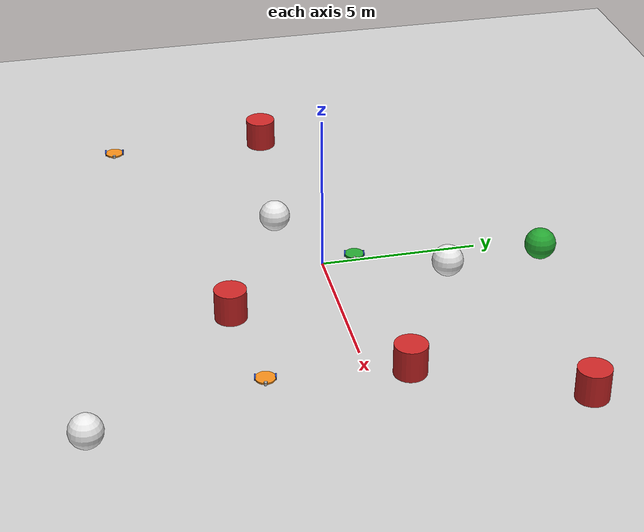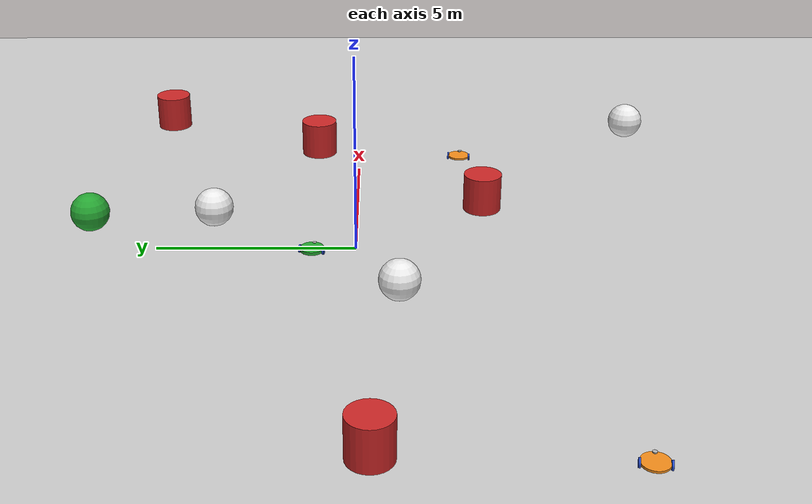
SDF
<sdf version="1.6">
 <world name="default">
  <light name="sun" type="directional">
   <pose>0 0 10 0 -0 0</pose>
   <diffuse>0.8 0.8 0.8 1</diffuse>
   <specular>0.2 0.2 0.2 1</specular>
   <attenuation>
    <range>1000</range>
    <constant>0.9</constant>
    <linear>0.01</linear>
    <quadratic>0.001</quadratic>
   </attenuation>
   <direction>-0.5 0.1 -0.9</direction>
  </light>
  <model name="ground_plane">
   <static>1</static>
   <link name="link">
    <collision name="collision">
     <geometry><plane><normal>0 0 1</normal><size>100 100</size></plane></geometry>
     <surface><friction><ode><mu>100</mu><mu2>50</mu2></ode></friction></surface>
    </collision>
    <visual name="visual">
     <cast_shadows>0</cast_shadows>
     <geometry><plane><normal>0 0 1</normal><size>100 100</size></plane></geometry>
     <material>
      <script><uri>file://media/materials/scripts/gazebo.material</uri><name>Gazebo/Grey</name></script>
     </material>
    </visual>
   </link>
  </model>
  <gravity>0 0 -9.8</gravity>
  <magnetic_field>6e-06 2.3e-05 -4.2e-05</magnetic_field>
  <atmosphere type="adiabatic"/>
  <physics name="default_physics" default="0" type="ode">
   <max_step_size>0.001</max_step_size>
   <real_time_factor>1</real_time_factor>
   <real_time_update_rate>1000</real_time_update_rate>
  </physics>
  <scene><ambient>0.4 0.4 0.4 1</ambient><background>0.7 0.7 0.7 1</background><shadows>1</shadows></scene>
  <spherical_coordinates>
   <surface_model>EARTH_WGS84</surface_model>
   <latitude_deg>0</latitude_deg>
   <longitude_deg>0</longitude_deg>
   <elevation>0</elevation>
   <heading_deg>0</heading_deg>
  </spherical_coordinates>
  <model name="ballA">
   <link name="block">
    <inertial>
     <mass>0.1</mass>
     <inertia><ixx>1.5e-05</ixx><ixy>0</ixy><ixz>0</ixz><iyy>1.5e-05</iyy><iyz>0</iyz><izz>1.5e-05</izz></inertia>
    </inertial>
    <collision name="block_collision">
     <geometry><sphere><radius>0.5</radius></sphere></geometry>
     <surface>
      <contact><ode><kp>100</kp><kd>100</kd><min_depth>0.001</min_depth></ode></contact>
      <friction><ode><mu>100000</mu><mu2>100000</mu2></ode></friction>
     </surface>
    </collision>
    <visual name="block_visual">
     <geometry><sphere><radius>0.5</radius></sphere></geometry>
     <material>
      <script><name>Gazebo/White</name><uri>file://media/materials/scripts/gazebo.material</uri></script>
     </material>
    </visual>
   </link>
   <pose>1.40486 3.70201 0.489249 0 -0 0</pose>
  </model>
  <model name="ballB">
   <link name="block">
    <inertial>
     <mass>0.1</mass>
     <inertia><ixx>1.5e-05</ixx><ixy>0</ixy><ixz>0</ixz><iyy>1.5e-05</iyy><iyz>0</iyz><izz>1.5e-05</izz></inertia>
    </inertial>
    <collision name="block_collision">
     <geometry><sphere><radius>0.5</radius></sphere></geometry>
     <surface>
      <contact><ode><kp>100</kp><kd>100</kd><min_depth>0.001</min_depth></ode></contact>
      <friction><ode><mu>100000</mu><mu2>100000</mu2></ode></friction>
     </surface>
    </collision>
    <visual name="block_visual">
     <geometry><sphere><radius>0.5</radius></sphere></geometry>
     <material>
      <script><name>Gazebo/White</name><uri>file://media/materials/scripts/gazebo.material</uri></script>
     </material>
    </visual>
   </link>
   <pose>7.574 -8.10566 0.489249 0 -0 0</pose>
  </model>
  <model name="CILC">
   <link name="block">
    <inertial>
     <mass>0.1</mass>
     <inertia>
      <ixx>0.0395417</ixx>
      <ixy>0</ixy>
      <ixz>0</ixz>
      <iyy>0.106208</iyy>
      <iyz>0</iyz>
      <izz>0.106208</izz>
     </inertia>
    </inertial>
    <collision name="block_collision">
     <geometry><cylinder><length>1</length><radius>0.5</radius></cylinder></geometry>
     <surface>
      <contact><ode><kp>1e+08</kp><kd>100</kd><min_depth>0.001</min_depth></ode></contact>
      <friction><ode><mu>100000</mu><mu2>100000</mu2></ode></friction>
     </surface>
    </collision>
    <visual name="block_visual">
     <geometry><cylinder><length>1</length><radius>0.5</radius></cylinder></geometry>
     <material>
      <script><name>Gazebo/Red</name><uri>file://media/materials/scripts/gazebo.material</uri></script>
     </material>
    </visual>
   </link>
   <pose>6.26306 1.18311 0.499054 5.2e-05 -0.000108 -0</pose>
  </model>
  <model name="CILD">
   <link name="block">
    <inertial>
     <mass>0.1</mass>
     <inertia>
      <ixx>0.0395417</ixx>
      <ixy>0</ixy>
      <ixz>0</ixz>
      <iyy>0.106208</iyy>
      <iyz>0</iyz>
      <izz>0.106208</izz>
     </inertia>
    </inertial>
    <collision name="block_collision">
     <geometry><cylinder><length>1</length><radius>0.5</radius></cylinder></geometry>
     <surface>
      <contact><ode><kp>1e+08</kp><kd>100</kd><min_depth>0.001</min_depth></ode></contact>
      <friction><ode><mu>100000</mu><mu2>100000</mu2></ode></friction>
     </surface>
    </collision>
    <visual name="block_visual">
     <geometry><cylinder><length>1</length><radius>0.5</radius></cylinder></geometry>
     <material>
      <script><name>Gazebo/Red</name><uri>file://media/materials/scripts/gazebo.material</uri></script>
     </material>
    </visual>
   </link>
   <pose>8.48065 5.82464 0.499045 4.9e-05 -9e-05 0</pose>
  </model>
  <model name="CILE">
   <link name="block">
    <inertial>
     <mass>0.1</mass>
     <inertia>
      <ixx>0.0395417</ixx>
      <ixy>0</ixy>
      <ixz>0</ixz>
      <iyy>0.106208</iyy>
      <iyz>0</iyz>
      <izz>0.106208</izz>
     </inertia>
    </inertial>
    <collision name="block_collision">
     <geometry><cylinder><length>1</length><radius>0.5</radius></cylinder></geometry>
     <surface>
      <contact><ode><kp>1e+08</kp><kd>100</kd><min_depth>0.001</min_depth></ode></contact>
      <friction><ode><mu>100000</mu><mu2>100000</mu2></ode></friction>
     </surface>
    </collision>
    <visual name="block_visual">
     <geometry><cylinder><length>1</length><radius>0.5</radius></cylinder></geometry>
     <material>
      <script><name>Gazebo/Red</name><uri>file://media/materials/scripts/gazebo.material</uri></script>
     </material>
    </visual>
   </link>
   <pose>-8.48288 -0.40629 0.499052 4.9e-05 -0.000104 0</pose>
  </model>
  <model name="robot5">
   <link name="block">
    <inertial>
     <mass>0.1</mass>
     <inertia><ixx>1.5e-05</ixx><ixy>0</ixy><ixz>0</ixz><iyy>1.5e-05</iyy><iyz>0</iyz><izz>1.5e-05</izz></inertia>
    </inertial>
    <collision name="block_collision">
     <geometry><sphere><radius>0.5</radius></sphere></geometry>
     <surface>
      <contact><ode><kp>1e+08</kp><kd>100</kd><min_depth>0.001</min_depth></ode></contact>
      <friction><ode><mu>100000</mu><mu2>100000</mu2></ode></friction>
     </surface>
    </collision>
    <visual name="block_visual">
     <geometry><sphere><radius>0.5</radius></sphere></geometry>
     <material>
      <script><name>Gazebo/Green</name><uri>file://media/materials/scripts/gazebo.material</uri></script>
     </material>
    </visual>
   </link>
   <pose>1.09347 6.8519 0.499704 0 -0 0</pose>
  </model>
  <model name="ballA_clone">
   <link name="block">
    <inertial>
     <mass>0.1</mass>
     <inertia><ixx>1.5e-05</ixx><ixy>0</ixy><ixz>0</ixz><iyy>1.5e-05</iyy><iyz>0</iyz><izz>1.5e-05</izz></inertia>
    </inertial>
    <collision name="block_collision">
     <geometry><sphere><radius>0.5</radius></sphere></geometry>
     <surface>
      <contact><ode><kp>100</kp><kd>100</kd><min_depth>0.001</min_depth></ode></contact>
      <friction><ode><mu>100000</mu><mu2>100000</mu2></ode></friction>
     </surface>
    </collision>
    <visual name="block_visual">
     <geometry><sphere><radius>0.5</radius></sphere></geometry>
     <material>
      <script><name>Gazebo/White</name><uri>file://media/materials/scripts/gazebo.material</uri></script>
     </material>
    </visual>
   </link>
   <pose>-2.4966 -1.05083 0.489249 0 -0 0</pose>
  </model>
  <model name="CILC_clone">
   <link name="block">
    <inertial>
     <mass>0.1</mass>
     <inertia>
      <ixx>0.0395417</ixx>
      <ixy>0</ixy>
      <ixz>0</ixz>
      <iyy>0.106208</iyy>
      <iyz>0</iyz>
      <izz>0.106208</izz>
     </inertia>
    </inertial>
    <collision name="block_collision">
     <geometry><cylinder><length>1</length><radius>0.5</radius></cylinder></geometry>
     <surface>
      <contact><ode><kp>1e+08</kp><kd>100</kd><min_depth>0.001</min_depth></ode></contact>
      <friction><ode><mu>100000</mu><mu2>100000</mu2></ode></friction>
     </surface>
    </collision>
    <visual name="block_visual">
     <geometry><cylinder><length>1</length><radius>0.5</radius></cylinder></geometry>
     <material>
      <script><name>Gazebo/Red</name><uri>file://media/materials/scripts/gazebo.material</uri></script>
     </material>
    </visual>
   </link>
   <pose>2.3619 -3.33107 0.499054 5.2e-05 -0.000108 -0</pose>
  </model>
  <model name="robot1">
   <link name="link_chassis">
    <inertial>
     <pose>0.12 0 0.055556 0 -0 0</pose>
     <mass>9.0001</mass>
     <inertia>
      <ixx>0.0632222</ixx>
      <ixy>0</ixy>
      <ixz>0.06</ixz>
      <iyy>0.291889</iyy>
      <iyz>4.05036e-36</iyz>
      <izz>0.269458</izz>
     </inertia>
    </inertial>
    <collision name="link_chassis_fixed_joint_lump__collision_chassis_collision">
     <geometry><cylinder><length>0.08</length><radius>0.3</radius></cylinder></geometry>
    </collision>
    <collision name="link_chassis_fixed_joint_lump__caster_front_collision_collision_1">
     <pose>0.35 0 -0.05 0 -0 0</pose>
     <geometry><sphere><radius>0.05</radius></sphere></geometry>
    </collision>
    <collision name="link_chassis_fixed_joint_lump__sensor_laser_collision_2">
     <pose>0.27 0 0 0 -0 0</pose>
     <geometry><cylinder><length>0.1</length><radius>0.05</radius></cylinder></geometry>
    </collision>
    <visual name="link_chassis_visual">
     <geometry><cylinder><length>0.08</length><radius>0.3</radius></cylinder></geometry>
     <material>
      <script><name>Gazebo/Green</name><uri>file://media/materials/scripts/gazebo.material</uri></script>
     </material>
    </visual>
    <visual name="link_chassis_fixed_joint_lump__caster_front_visual_visual_1">
     <pose>0.2 0 -0.05 0 -0 0</pose>
     <geometry><sphere><radius>0.05</radius></sphere></geometry>
    </visual>
    <visual name="link_chassis_fixed_joint_lump__sensor_laser_visual_2">
     <pose>0.27 0 0 0 -0 0</pose>
     <geometry><cylinder><length>0.1</length><radius>0.05</radius></cylinder></geometry>
     <material><script><uri>__default__</uri><name>__default__</name></script></material>
    </visual>
    <sensor name="head_camera" type="camera">
     <update_rate>30</update_rate>
     <camera name="head_camera">
      <pose>0 0.21 0 -0 -0.8 -1.5708</pose>
      <horizontal_fov>1.39626</horizontal_fov>
      <image><width>960</width><height>600</height><format>R8G8B8</format></image>
      <clip><near>0.02</near><far>300</far></clip>
      <noise><type>gaussian</type><mean>0</mean><stddev>0.007</stddev></noise>
     </camera>
     <plugin name="camera_controller" filename="libgazebo_ros_camera.so">
      <alwaysOn>true</alwaysOn>
      <updateRate>0.0</updateRate>
      <cameraName>head_camera</cameraName>
      <imageTopicName>image</imageTopicName>
      <cameraInfoTopicName>camera_info</cameraInfoTopicName>
      <frameName>head_camera</frameName>
      <hackBaseline>0.07</hackBaseline>
      <distortionK1>0.0</distortionK1>
      <distortionK2>0.0</distortionK2>
      <distortionK3>0.0</distortionK3>
      <distortionT1>0.0</distortionT1>
      <distortionT2>0.0</distortionT2>
      <CxPrime>0</CxPrime>
      <Cx>0.0</Cx>
      <Cy>0.0</Cy>
      <focalLength>0.0</focalLength>
      <robotNamespace>/cameras</robotNamespace>
     </plugin>
     <pose>0.12839 0 0.06368 0.75057 -0 1.5708</pose>
    </sensor>
    <sensor name="head_hokuyo_sensor" type="ray">
     <visualize>1</visualize>
     <always_on>1</always_on>
     <update_rate>30</update_rate>
     <ray>
      <scan>
       <horizontal>
        <samples>10</samples>
        <resolution>1</resolution>
        <min_angle>-1.0472</min_angle>
        <max_angle>1.0472</max_angle>
       </horizontal>
       <vertical><samples>1</samples><min_angle>0</min_angle><max_angle>0</max_angle></vertical>
      </scan>
      <range><min>0.1</min><max>3</max><resolution>0.01</resolution></range>
      <noise><type>gaussian</type><mean>0</mean><stddev>0.01</stddev></noise>
     </ray>
     <plugin name="gazebo_ros_head_hokuyo_controller" filename="libgazebo_ros_laser.so">
      <topicName>/robot/laser/scan</topicName>
      <frameName>sensor_laser</frameName>
      <robotNamespace>/</robotNamespace>
     </plugin>
     <pose>0.27 0 0 0 -0 0</pose>
    </sensor>
   </link>
   <link name="link_left_wheel">
    <pose>-0.05 -0.3 0 0 -0 0</pose>
    <inertial>
     <pose>0 0 0 -0 1.5707 1.5707</pose>
     <mass>0.2</mass>
     <inertia>
      <ixx>0.000526667</ixx>
      <ixy>0</ixy>
      <ixz>0</ixz>
      <iyy>0.000526667</iyy>
      <iyz>0</iyz>
      <izz>0.001</izz>
     </inertia>
    </inertial>
    <collision name="link_left_wheel_fixed_joint_lump__link_right_wheel_collision_collision">
     <pose>0 0 0 3.14159 1.57079 -1.57089</pose>
     <geometry><cylinder><length>0.04</length><radius>0.1</radius></cylinder></geometry>
    </collision>
    <visual name="link_left_wheel_visual_visual">
     <pose>0 0 0 3.14159 1.57079 -1.57089</pose>
     <geometry><cylinder><length>0.04</length><radius>0.1</radius></cylinder></geometry>
     <material>
      <script><name>Gazebo/Blue</name><uri>file://media/materials/scripts/gazebo.material</uri></script>
     </material>
    </visual>
   </link>
   <joint name="joint_left_wheel" type="revolute">
    <child>link_left_wheel</child>
    <parent>link_chassis</parent>
    <axis>
     <xyz>0 1 0</xyz>
     <limit><lower>-1e+16</lower><upper>1e+16</upper></limit>
     <dynamics><spring_reference>0</spring_reference><spring_stiffness>0</spring_stiffness></dynamics>
     <use_parent_model_frame>1</use_parent_model_frame>
    </axis>
   </joint>
   <link name="link_right_wheel">
    <pose>-0.05 0.3 0 0 -0 0</pose>
    <inertial>
     <pose>0 0 0 -0 1.5707 1.5707</pose>
     <mass>0.2</mass>
     <inertia>
      <ixx>0.000526667</ixx>
      <ixy>0</ixy>
      <ixz>0</ixz>
      <iyy>0.000526667</iyy>
      <iyz>0</iyz>
      <izz>0.001</izz>
     </inertia>
    </inertial>
    <collision name="link_right_wheel_collision_collision">
     <pose>0 0 0 3.14159 1.57079 -1.57089</pose>
     <geometry><cylinder><length>0.04</length><radius>0.1</radius></cylinder></geometry>
    </collision>
    <visual name="link_right_wheel_visual_visual">
     <pose>0 0 0 3.14159 1.57079 -1.57089</pose>
     <geometry><cylinder><length>0.04</length><radius>0.1</radius></cylinder></geometry>
     <material>
      <script><name>Gazebo/Blue</name><uri>file://media/materials/scripts/gazebo.material</uri></script>
     </material>
    </visual>
   </link>
   <joint name="joint_right_wheel" type="revolute">
    <child>link_right_wheel</child>
    <parent>link_chassis</parent>
    <axis>
     <xyz>0 1 0</xyz>
     <limit><lower>-1e+16</lower><upper>1e+16</upper></limit>
     <dynamics><spring_reference>0</spring_reference><spring_stiffness>0</spring_stiffness></dynamics>
     <use_parent_model_frame>1</use_parent_model_frame>
    </axis>
   </joint>
   <static>0</static>
   <plugin name="differential_drive_controller" filename="libgazebo_ros_diff_drive.so">
    <alwaysOn>true</alwaysOn>
    <legacyMode>false</legacyMode>
    <updateRate>20</updateRate>
    <leftJoint>joint_left_wheel</leftJoint>
    <rightJoint>joint_right_wheel</rightJoint>
    <wheelSeparation>0.6</wheelSeparation>
    <wheelDiameter>0.2</wheelDiameter>
    <torque>0.1</torque>
    <commandTopic>cmd_vel</commandTopic>
    <odometryTopic>odom</odometryTopic>
    <odometryFrame>odom</odometryFrame>
    <robotBaseFrame>link_chassis</robotBaseFrame>
    <robotNamespace>/</robotNamespace>
   </plugin>
   <pose>-0.197619 1.08902 0.099996 -4e-06 -1.2e-05 -0.183222</pose>
  </model>
  <model name="robot2">
   <link name="link_chassis">
    <inertial>
     <pose>0.12 0 0.055556 0 -0 0</pose>
     <mass>9</mass>
     <inertia>
      <ixx>0.0632222</ixx>
      <ixy>0</ixy>
      <ixz>0.06</ixz>
      <iyy>0.291889</iyy>
      <iyz>0</iyz>
      <izz>0.269458</izz>
     </inertia>
    </inertial>
    <collision name="link_chassis_fixed_joint_lump__collision_chassis_collision">
     <geometry><cylinder><length>0.05</length><radius>0.3</radius></cylinder></geometry>
    </collision>
    <collision name="link_chassis_fixed_joint_lump__caster_front_collision_collision_1">
     <pose>0.35 0 -0.05 0 -0 0</pose>
     <geometry><sphere><radius>0.05</radius></sphere></geometry>
    </collision>
    <collision name="link_chassis_fixed_joint_lump__sensor_laser_collision_2">
     <pose>0.27 0 0 0 -0 0</pose>
     <geometry><cylinder><length>0.1</length><radius>0.05</radius></cylinder></geometry>
    </collision>
    <visual name="link_chassis_visual">
     <geometry><cylinder><length>0.05</length><radius>0.3</radius></cylinder></geometry>
     <material>
      <script><name>Gazebo/Orange</name><uri>file://media/materials/scripts/gazebo.material</uri></script>
     </material>
    </visual>
    <visual name="link_chassis_fixed_joint_lump__caster_front_visual_visual_1">
     <pose>0.2 0 -0.05 0 -0 0</pose>
     <geometry><sphere><radius>0.05</radius></sphere></geometry>
    </visual>
    <visual name="link_chassis_fixed_joint_lump__sensor_laser_visual_2">
     <pose>0.27 0 0 0 -0 0</pose>
     <geometry><cylinder><length>0.1</length><radius>0.05</radius></cylinder></geometry>
     <material><script><uri>__default__</uri><name>__default__</name></script></material>
    </visual>
    <sensor name="head_hokuyo_sensor" type="ray">
     <visualize>1</visualize>
     <always_on>1</always_on>
     <update_rate>30</update_rate>
     <ray>
      <scan>
       <horizontal>
        <samples>10</samples>
        <resolution>1</resolution>
        <min_angle>-1.0472</min_angle>
        <max_angle>1.0472</max_angle>
       </horizontal>
       <vertical><samples>1</samples><min_angle>0</min_angle><max_angle>0</max_angle></vertical>
      </scan>
      <range><min>0.1</min><max>3</max><resolution>0.01</resolution></range>
      <noise><type>gaussian</type><mean>0</mean><stddev>0.01</stddev></noise>
     </ray>
     <plugin name="gazebo_ros_head_hokuyo_controller" filename="libgazebo_ros_laser.so">
      <topicName>/robot2/laser2/scan2</topicName>
      <frameName>sensor_laser</frameName>
      <robotNamespace>/</robotNamespace>
     </plugin>
     <pose>0.27 0 0 0 -0 0</pose>
    </sensor>
   </link>
   <link name="link_left_wheel">
    <pose>-0.05 -0.3 0 0 -0 0</pose>
    <inertial>
     <pose>0 0 0 -0 1.5707 1.5707</pose>
     <mass>0.2</mass>
     <inertia>
      <ixx>0.000526667</ixx>
      <ixy>0</ixy>
      <ixz>0</ixz>
      <iyy>0.000526667</iyy>
      <iyz>0</iyz>
      <izz>0.001</izz>
     </inertia>
    </inertial>
    <collision name="link_left_wheel_fixed_joint_lump__link_right_wheel_collision_collision">
     <pose>0 0 0 3.14159 1.57079 -1.57089</pose>
     <geometry><cylinder><length>0.04</length><radius>0.1</radius></cylinder></geometry>
    </collision>
    <visual name="link_left_wheel_visual_visual">
     <pose>0 0 0 3.14159 1.57079 -1.57089</pose>
     <geometry><cylinder><length>0.04</length><radius>0.1</radius></cylinder></geometry>
     <material>
      <script><name>Gazebo/Blue</name><uri>file://media/materials/scripts/gazebo.material</uri></script>
     </material>
    </visual>
   </link>
   <joint name="joint_left_wheel" type="revolute">
    <child>link_left_wheel</child>
    <parent>link_chassis</parent>
    <axis>
     <xyz>0 1 0</xyz>
     <limit><lower>-1e+16</lower><upper>1e+16</upper></limit>
     <dynamics><spring_reference>0</spring_reference><spring_stiffness>0</spring_stiffness></dynamics>
     <use_parent_model_frame>1</use_parent_model_frame>
    </axis>
   </joint>
   <link name="link_right_wheel">
    <pose>-0.05 0.3 0 0 -0 0</pose>
    <inertial>
     <pose>0 0 0 -0 1.5707 1.5707</pose>
     <mass>0.2</mass>
     <inertia>
      <ixx>0.000526667</ixx>
      <ixy>0</ixy>
      <ixz>0</ixz>
      <iyy>0.000526667</iyy>
      <iyz>0</iyz>
      <izz>0.001</izz>
     </inertia>
    </inertial>
    <collision name="link_right_wheel_collision_collision">
     <pose>0 0 0 3.14159 1.57079 -1.57089</pose>
     <geometry><cylinder><length>0.04</length><radius>0.1</radius></cylinder></geometry>
    </collision>
    <visual name="link_right_wheel_visual_visual">
     <pose>0 0 0 3.14159 1.57079 -1.57089</pose>
     <geometry><cylinder><length>0.04</length><radius>0.1</radius></cylinder></geometry>
     <material>
      <script><name>Gazebo/Blue</name><uri>file://media/materials/scripts/gazebo.material</uri></script>
     </material>
    </visual>
   </link>
   <joint name="joint_right_wheel" type="revolute">
    <child>link_right_wheel</child>
    <parent>link_chassis</parent>
    <axis>
     <xyz>0 1 0</xyz>
     <limit><lower>-1e+16</lower><upper>1e+16</upper></limit>
     <dynamics><spring_reference>0</spring_reference><spring_stiffness>0</spring_stiffness></dynamics>
     <use_parent_model_frame>1</use_parent_model_frame>
    </axis>
   </joint>
   <static>0</static>
   <plugin name="differential_drive_controller" filename="libgazebo_ros_diff_drive.so">
    <alwaysOn>true</alwaysOn>
    <legacyMode>false</legacyMode>
    <updateRate>20</updateRate>
    <leftJoint>joint_left_wheel</leftJoint>
    <rightJoint>joint_right_wheel</rightJoint>
    <wheelSeparation>0.6</wheelSeparation>
    <wheelDiameter>0.2</wheelDiameter>
    <torque>0.1</torque>
    <commandTopic>cmd2_vel2</commandTopic>
    <odometryTopic>odom</odometryTopic>
    <odometryFrame>odom</odometryFrame>
    <robotBaseFrame>link_chassis</robotBaseFrame>
    <robotNamespace>/</robotNamespace>
   </plugin>
   <pose>5.74446 -2.91699 0.099996 -4e-06 -1.2e-05 -0.165345</pose>
  </model>
  <model name="robot3">
   <link name="link_chassis">
    <inertial>
     <pose>0.12 0 0.055556 0 -0 0</pose>
     <mass>9</mass>
     <inertia>
      <ixx>0.0632222</ixx>
      <ixy>0</ixy>
      <ixz>0.06</ixz>
      <iyy>0.291889</iyy>
      <iyz>0</iyz>
      <izz>0.269458</izz>
     </inertia>
    </inertial>
    <collision name="link_chassis_fixed_joint_lump__collision_chassis_collision">
     <geometry><cylinder><length>0.05</length><radius>0.3</radius></cylinder></geometry>
    </collision>
    <collision name="link_chassis_fixed_joint_lump__caster_front_collision_collision_1">
     <pose>0.35 0 -0.05 0 -0 0</pose>
     <geometry><sphere><radius>0.05</radius></sphere></geometry>
    </collision>
    <collision name="link_chassis_fixed_joint_lump__sensor_laser_collision_2">
     <pose>0.27 0 0 0 -0 0</pose>
     <geometry><cylinder><length>0.1</length><radius>0.05</radius></cylinder></geometry>
    </collision>
    <visual name="link_chassis_visual">
     <geometry><cylinder><length>0.05</length><radius>0.3</radius></cylinder></geometry>
     <material>
      <script><name>Gazebo/Orange</name><uri>file://media/materials/scripts/gazebo.material</uri></script>
     </material>
    </visual>
    <visual name="link_chassis_fixed_joint_lump__caster_front_visual_visual_1">
     <pose>0.2 0 -0.05 0 -0 0</pose>
     <geometry><sphere><radius>0.05</radius></sphere></geometry>
    </visual>
    <visual name="link_chassis_fixed_joint_lump__sensor_laser_visual_2">
     <pose>0.27 0 0 0 -0 0</pose>
     <geometry><cylinder><length>0.1</length><radius>0.05</radius></cylinder></geometry>
     <material><script><uri>__default__</uri><name>__default__</name></script></material>
    </visual>
    <sensor name="head_hokuyo_sensor" type="ray">
     <visualize>1</visualize>
     <always_on>1</always_on>
     <update_rate>30</update_rate>
     <ray>
      <scan>
       <horizontal>
        <samples>10</samples>
        <resolution>1</resolution>
        <min_angle>-1.0472</min_angle>
        <max_angle>1.0472</max_angle>
       </horizontal>
       <vertical><samples>1</samples><min_angle>0</min_angle><max_angle>0</max_angle></vertical>
      </scan>
      <range><min>0.1</min><max>3</max><resolution>0.01</resolution></range>
      <noise><type>gaussian</type><mean>0</mean><stddev>0.01</stddev></noise>
     </ray>
     <plugin name="gazebo_ros_head_hokuyo_controller" filename="libgazebo_ros_laser.so">
      <topicName>/robot3/laser3/scan3</topicName>
      <frameName>sensor_laser</frameName>
      <robotNamespace>/</robotNamespace>
     </plugin>
     <pose>0.27 0 0 0 -0 0</pose>
    </sensor>
   </link>
   <link name="link_left_wheel">
    <pose>-0.05 -0.3 0 0 -0 0</pose>
    <inertial>
     <pose>0 0 0 -0 1.5707 1.5707</pose>
     <mass>0.2</mass>
     <inertia>
      <ixx>0.000526667</ixx>
      <ixy>0</ixy>
      <ixz>0</ixz>
      <iyy>0.000526667</iyy>
      <iyz>0</iyz>
      <izz>0.001</izz>
     </inertia>
    </inertial>
    <collision name="link_left_wheel_fixed_joint_lump__link_right_wheel_collision_collision">
     <pose>0 0 0 3.14159 1.57079 -1.57089</pose>
     <geometry><cylinder><length>0.04</length><radius>0.1</radius></cylinder></geometry>
    </collision>
    <visual name="link_left_wheel_visual_visual">
     <pose>0 0 0 3.14159 1.57079 -1.57089</pose>
     <geometry><cylinder><length>0.04</length><radius>0.1</radius></cylinder></geometry>
     <material>
      <script><name>Gazebo/Blue</name><uri>file://media/materials/scripts/gazebo.material</uri></script>
     </material>
    </visual>
   </link>
   <joint name="joint_left_wheel" type="revolute">
    <child>link_left_wheel</child>
    <parent>link_chassis</parent>
    <axis>
     <xyz>0 1 0</xyz>
     <limit><lower>-1e+16</lower><upper>1e+16</upper></limit>
     <dynamics><spring_reference>0</spring_reference><spring_stiffness>0</spring_stiffness></dynamics>
     <use_parent_model_frame>1</use_parent_model_frame>
    </axis>
   </joint>
   <link name="link_right_wheel">
    <pose>-0.05 0.3 0 0 -0 0</pose>
    <inertial>
     <pose>0 0 0 -0 1.5707 1.5707</pose>
     <mass>0.2</mass>
     <inertia>
      <ixx>0.000526667</ixx>
      <ixy>0</ixy>
      <ixz>0</ixz>
      <iyy>0.000526667</iyy>
      <iyz>0</iyz>
      <izz>0.001</izz>
     </inertia>
    </inertial>
    <collision name="link_right_wheel_collision_collision">
     <pose>0 0 0 3.14159 1.57079 -1.57089</pose>
     <geometry><cylinder><length>0.04</length><radius>0.1</radius></cylinder></geometry>
    </collision>
    <visual name="link_right_wheel_visual_visual">
     <pose>0 0 0 3.14159 1.57079 -1.57089</pose>
     <geometry><cylinder><length>0.04</length><radius>0.1</radius></cylinder></geometry>
     <material>
      <script><name>Gazebo/Blue</name><uri>file://media/materials/scripts/gazebo.material</uri></script>
     </material>
    </visual>
   </link>
   <joint name="joint_right_wheel" type="revolute">
    <child>link_right_wheel</child>
    <parent>link_chassis</parent>
    <axis>
     <xyz>0 1 0</xyz>
     <limit><lower>-1e+16</lower><upper>1e+16</upper></limit>
     <dynamics><spring_reference>0</spring_reference><spring_stiffness>0</spring_stiffness></dynamics>
     <use_parent_model_frame>1</use_parent_model_frame>
    </axis>
   </joint>
   <static>0</static>
   <plugin name="differential_drive_controller" filename="libgazebo_ros_diff_drive.so">
    <alwaysOn>true</alwaysOn>
    <legacyMode>false</legacyMode>
    <updateRate>20</updateRate>
    <leftJoint>joint_left_wheel</leftJoint>
    <rightJoint>joint_right_wheel</rightJoint>
    <wheelSeparation>0.6</wheelSeparation>
    <wheelDiameter>0.2</wheelDiameter>
    <torque>0.1</torque>
    <commandTopic>cmd3_vel3</commandTopic>
    <odometryTopic>odom</odometryTopic>
    <odometryFrame>odom</odometryFrame>
    <robotBaseFrame>link_chassis</robotBaseFrame>
    <robotNamespace>/</robotNamespace>
   </plugin>
   <pose>-8.73726 -5.66296 0.1 -2e-06 1e-06 -0.132781</pose>
  </model>
 </world>
</sdf>
